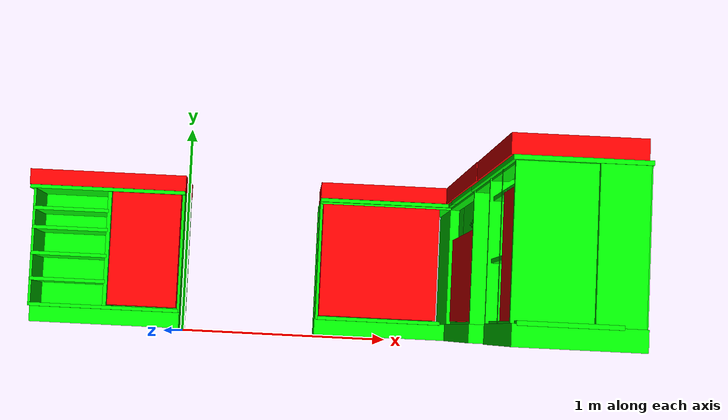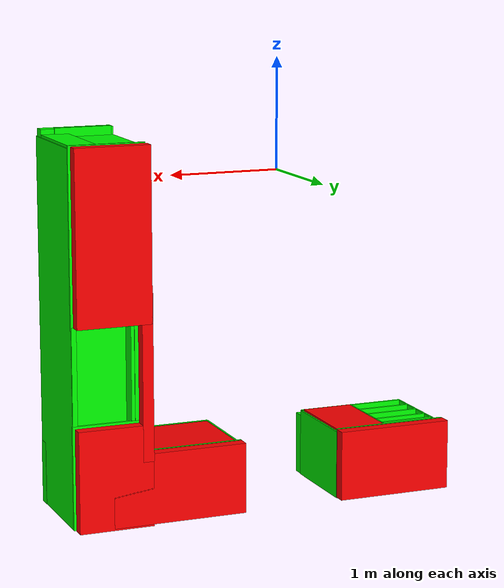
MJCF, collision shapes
<mujoco model="StandardCounterHeightWidth_59bda8d0">
  <compiler autolimits="true" boundmass="0.01" angle="radian"/>
  <default>
    <default class="/">
      <default class="__VISUAL_MJT__">
        <geom contype="0" conaffinity="0" group="0" mass="1e-08"/>
      </default>
      <default class="__STRUCTURAL_MJT__">
        <geom contype="8" conaffinity="15" group="4" friction="0.90000000000000002 0.90000000000000002 0.001" density="500" solref="0.025000000000000001 1" solimp="0.998 0.998 0.001"/>
      </default>
      <default class="__DYNAMIC_MJT__">
        <geom contype="1" conaffinity="15" group="4" friction="0.90000000000000002 0.90000000000000002 0.001" density="500" solref="0.025000000000000001 1" solimp="0.998 0.998 0.001"/>
      </default>
      <default class="__ARTICULABLE_DYNAMIC_MJT__">
        <geom contype="0" conaffinity="7" group="4" friction="0.90000000000000002 0.90000000000000002 0.001" density="500" solref="0.025000000000000001 1" solimp="0.998 0.998 0.001"/>
      </default>
    </default>
  </default>
  <asset>
    <material name="material_WhiteWoodClean" class="/" specular="0.5" shininess="0.5" rgba="1 1 1 1"/>
    <texture name="LightWhite" type="2d" file="TexturesCom_MarbleNoisy0062_1_seamless_S.png"/>
    <material name="material_LightWhite" class="/" texture="LightWhite" specular="0.5" shininess="0.5" rgba="0.88970590000000005 0.88970590000000005 0.88970590000000005 1"/>
    <mesh name="StandardCounterHeightWidth_59bda8d0_StandardCounterHeightWidth_59bda8d0_0" class="/" file="StandardCounterHeightWidth_59bda8d0_StandardCounterHeightWidth_59bda8d0/StandardCounterHeightWidth_59bda8d0_StandardCounterHeightWidth_59bda8d0_0.obj" scale="1 1 1" inertia="legacy"/>
    <mesh name="StandardCounterHeightWidth_59bda8d0_StandardCounterHeightWidth_59bda8d0_1" class="/" file="StandardCounterHeightWidth_59bda8d0_StandardCounterHeightWidth_59bda8d0/StandardCounterHeightWidth_59bda8d0_StandardCounterHeightWidth_59bda8d0_1.obj" scale="1 1 1" inertia="legacy"/>
  </asset>
  <worldbody>
    <body name="StandardCounterHeightWidth_59bda8d0">
      <body name="StandardCounterHeightWidth_59bda8d0_StandardCounterHeightWidth_59bda8d0" pos="-0 0 0" quat="1 0 0 0">
        <geom name="StandardCounterHeightWidth_59bda8d0_StandardCounterHeightWidth_59bda8d0_0" class="__VISUAL_MJT__" type="mesh" material="material_WhiteWoodClean" mesh="StandardCounterHeightWidth_59bda8d0_StandardCounterHeightWidth_59bda8d0_0"/>
        <geom name="StandardCounterHeightWidth_59bda8d0_StandardCounterHeightWidth_59bda8d0_1" class="__VISUAL_MJT__" type="mesh" material="material_LightWhite" mesh="StandardCounterHeightWidth_59bda8d0_StandardCounterHeightWidth_59bda8d0_1"/>
        <site name="StandardCounterHeightWidth_59bda8d0_StandardCounterHeightWidth_59bda8d0_Receptacle_0" class="/" type="box" rgba="1 0 0 1" size="0.46698275208473206 0.26118838787078857 0.19965556263923645" pos="1.7553443908691406 0.38748836517333984 -1.5067006349563599" quat="0 0.70710678118654757 0 0.70710678118654757"/>
        <site name="StandardCounterHeightWidth_59bda8d0_StandardCounterHeightWidth_59bda8d0_Receptacle_1" class="/" type="box" rgba="1 0 0 1" size="0.38414856791496277 0.36928397417068481 0.20177745819091797" pos="1.1041486263275146 0.49628466367721558 -2.4027144908905029" quat="0 1 0 0"/>
        <site name="StandardCounterHeightWidth_59bda8d0_StandardCounterHeightWidth_59bda8d0_Receptacle_2" class="/" type="box" rgba="1 0 0 1" size="0.22718478739261627 0.3813571035861969 0.19650635123252869" pos="-0.44999992847442627 0.51199996471405029 -2.3870000839233398" quat="0 1 0 0"/>
        <site name="StandardCounterHeightWidth_59bda8d0_StandardCounterHeightWidth_59bda8d0_Receptacle_3" class="/" type="box" rgba="1 0 0 1" size="0.18174411356449127 0.31935292482376099 0.19941979646682739" pos="1.7650725841522217 0.439250648021698 0.20343700051307678" quat="0 0.70710678118654757 0 0.70710678118654757"/>
        <site name="StandardCounterHeightWidth_59bda8d0_StandardCounterHeightWidth_59bda8d0_Receptacle_4" class="/" type="box" rgba="1 0 0 1" size="0.3257116973400116 0.051499977707862854 0.74385678768157959" pos="1.8562743663787842 0.9528999924659729 -0.32703673839569092" quat="0 1 0 0"/>
        <site name="StandardCounterHeightWidth_59bda8d0_StandardCounterHeightWidth_59bda8d0_Receptacle_5" class="/" type="box" rgba="1 0 0 1" size="0.59034931659698486 0.051500000059604645 0.30725890398025513" pos="1.2908389568328857 0.9528999924659729 -2.4834566116333008" quat="0 1 0 0"/>
        <site name="StandardCounterHeightWidth_59bda8d0_StandardCounterHeightWidth_59bda8d0_Receptacle_6" class="/" type="box" rgba="1 0 0 1" size="0.3257099986076355 0.051500000059604645 0.4392341673374176" pos="1.8562743663787842 0.9528999924659729 -2.366023063659668" quat="0 1 0 0"/>
        <site name="StandardCounterHeightWidth_59bda8d0_StandardCounterHeightWidth_59bda8d0_Receptacle_7" class="/" type="box" rgba="1 0 0 1" size="0.04739578440785408 0.051500000059604645 0.7466997504234314" pos="1.5742080211639404 0.9528999924659729 -1.4961683750152588" quat="0 1 0 0"/>
        <site name="StandardCounterHeightWidth_59bda8d0_StandardCounterHeightWidth_59bda8d0_Receptacle_8" class="/" type="box" rgba="1 0 0 1" size="0.51547878980636597 0.051499977707862854 0.30726626515388489" pos="-0.71155726909637451 0.95219999551773071 -2.4839999675750732" quat="0 1 0 0"/>
        <geom name="StandardCounterHeightWidth_59bda8d0_StandardCounterHeightWidth_59bda8d0_PrimitiveCollider_0" class="__DYNAMIC_MJT__" type="box" size="0.11903977394104004 0.39934372901916504 0.41769060492515564" rgba="0 1 0 1" pos="2.0712711811065674 0.48989582061767578 0.0053951889276504517" quat="0 1 0 0"/>
        <geom name="StandardCounterHeightWidth_59bda8d0_StandardCounterHeightWidth_59bda8d0_PrimitiveCollider_1" class="__DYNAMIC_MJT__" type="box" size="0.40857243537902832 0.39934372901916504 0.098129153251647949" rgba="0 1 0 1" pos="1.1023924350738525 0.48989582061767578 -2.7005877494812012" quat="0 1 0 0"/>
        <geom name="StandardCounterHeightWidth_59bda8d0_StandardCounterHeightWidth_59bda8d0_PrimitiveCollider_2" class="__DYNAMIC_MJT__" type="box" size="0.48764577507972717 0.39934372901916504 0.098129153251647949" rgba="0 1 0 1" pos="-0.70301330089569092 0.48989582061767578 -2.7005877494812012" quat="0 1 0 0"/>
        <geom name="StandardCounterHeightWidth_59bda8d0_StandardCounterHeightWidth_59bda8d0_PrimitiveCollider_3" class="__DYNAMIC_MJT__" type="box" size="0.3181614875793457 0.054766781628131866 0.6157417893409729" rgba="0 1 0 1" pos="1.8721494674682617 0.053478352725505829 -1.6400001049041748" quat="0 1 0 0"/>
        <geom name="StandardCounterHeightWidth_59bda8d0_StandardCounterHeightWidth_59bda8d0_PrimitiveCollider_4" class="__DYNAMIC_MJT__" type="box" size="0.75558078289031982 0.05284726619720459 0.27572417259216309" rgba="0 1 0 1" pos="1.4494009017944336 0.052848517894744873 -2.5229928493499756" quat="0 1 0 0"/>
        <geom name="StandardCounterHeightWidth_59bda8d0_StandardCounterHeightWidth_59bda8d0_PrimitiveCollider_5" class="__DYNAMIC_MJT__" type="box" size="0.49633929133415222 0.052847243845462799 0.27448225021362305" rgba="0 1 0 1" pos="-0.6992877721786499 0.050364695489406586 -2.5242347717285156" quat="0 1 0 0"/>
        <geom name="StandardCounterHeightWidth_59bda8d0_StandardCounterHeightWidth_59bda8d0_PrimitiveCollider_6" class="__DYNAMIC_MJT__" type="box" size="0.12523806095123291 0.27242988348007202 0.48392891883850098" rgba="0 1 0 1" pos="2.0752573013305664 0.38900995254516602 -1.5150556564331055" quat="0 1 0 0"/>
        <geom name="StandardCounterHeightWidth_59bda8d0_StandardCounterHeightWidth_59bda8d0_PrimitiveCollider_7" class="__DYNAMIC_MJT__" type="box" size="0.021013617515563965 0.39934372901916504 0.31155133247375488" rgba="0 1 0 1" pos="2.1320972442626953 0.48989582061767578 -0.71808928251266479" quat="0 1 0 0"/>
        <geom name="StandardCounterHeightWidth_59bda8d0_StandardCounterHeightWidth_59bda8d0_PrimitiveCollider_8" class="__DYNAMIC_MJT__" type="box" size="0.51139593124389648 0.011459499597549438 0.31201052665710449" rgba="0 1 0 1" pos="-0.71132099628448486 0.88862216472625732 -2.4867064952850342" quat="0 1 0 0"/>
        <geom name="StandardCounterHeightWidth_59bda8d0_StandardCounterHeightWidth_59bda8d0_PrimitiveCollider_9" class="__DYNAMIC_MJT__" type="box" size="0.43300753831863403 0.011459499597549438 0.31208908557891846" rgba="0 1 0 1" pos="1.1332905292510986 0.88862216472625732 -2.4866280555725098" quat="0 1 0 0"/>
        <geom name="StandardCounterHeightWidth_59bda8d0_StandardCounterHeightWidth_59bda8d0_PrimitiveCollider_10" class="__DYNAMIC_MJT__" type="box" size="0.33020108938217163 0.011459499597549438 0.44702601432800293" rgba="0 1 0 1" pos="1.8727467060089111 0.88862216472625732 -2.3516910076141357" quat="0 1 0 0"/>
        <geom name="StandardCounterHeightWidth_59bda8d0_StandardCounterHeightWidth_59bda8d0_PrimitiveCollider_11" class="__DYNAMIC_MJT__" type="box" size="0.021608710289001465 0.011459499597549438 0.44702601432800293" rgba="0 1 0 1" pos="2.17759108543396 0.88862216472625732 -1.5146908760070801" quat="0 1 0 0"/>
        <geom name="StandardCounterHeightWidth_59bda8d0_StandardCounterHeightWidth_59bda8d0_PrimitiveCollider_12" class="__DYNAMIC_MJT__" type="box" size="0.058413386344909668 0.011459499597549438 0.44702601432800293" rgba="0 1 0 1" pos="1.5964221954345703 0.88862216472625732 -1.5146908760070801" quat="0 1 0 0"/>
        <geom name="StandardCounterHeightWidth_59bda8d0_StandardCounterHeightWidth_59bda8d0_PrimitiveCollider_13" class="__DYNAMIC_MJT__" type="box" size="0.33020108938217163 0.011459499597549438 0.76128029823303223" rgba="0 1 0 1" pos="1.8727467060089111 0.88862216472625732 -0.33481019735336304" quat="0 1 0 0"/>
        <geom name="StandardCounterHeightWidth_59bda8d0_StandardCounterHeightWidth_59bda8d0_PrimitiveCollider_14" class="__DYNAMIC_MJT__" type="box" size="0.24880456924438477 0.011459499597549438 0.29941582679748535" rgba="0 1 0 1" pos="-0.94900000095367432 0.74900001287460327 -2.5" quat="0 1 0 0"/>
        <geom name="StandardCounterHeightWidth_59bda8d0_StandardCounterHeightWidth_59bda8d0_PrimitiveCollider_15" class="__DYNAMIC_MJT__" type="box" size="0.24880456924438477 0.011459499597549438 0.29941582679748535" rgba="0 1 0 1" pos="-0.94900000095367432 0.62099999189376831 -2.5" quat="0 1 0 0"/>
        <geom name="StandardCounterHeightWidth_59bda8d0_StandardCounterHeightWidth_59bda8d0_PrimitiveCollider_16" class="__DYNAMIC_MJT__" type="box" size="0.24880456924438477 0.011459499597549438 0.29941582679748535" rgba="0 1 0 1" pos="-0.94900000095367432 0.44999998807907104 -2.5" quat="0 1 0 0"/>
        <geom name="StandardCounterHeightWidth_59bda8d0_StandardCounterHeightWidth_59bda8d0_PrimitiveCollider_17" class="__DYNAMIC_MJT__" type="box" size="0.24880456924438477 0.011459499597549438 0.29941582679748535" rgba="0 1 0 1" pos="-0.94900000095367432 0.2800000011920929 -2.5" quat="0 1 0 0"/>
        <geom name="StandardCounterHeightWidth_59bda8d0_StandardCounterHeightWidth_59bda8d0_PrimitiveCollider_18" class="__DYNAMIC_MJT__" type="box" size="0.49298596382141113 0.011459499597549438 0.27448225021362305" rgba="0 1 0 1" pos="-0.70200002193450928 0.11100000143051147 -2.4730000495910645" quat="0 1 0 0"/>
        <geom name="StandardCounterHeightWidth_59bda8d0_StandardCounterHeightWidth_59bda8d0_PrimitiveCollider_19" class="__DYNAMIC_MJT__" type="box" size="0.40349733829498291 0.011459499597549438 0.27448225021362305" rgba="0 1 0 1" pos="1.1140000820159912 0.11100000143051147 -2.4730000495910645" quat="0 1 0 0"/>
        <geom name="StandardCounterHeightWidth_59bda8d0_StandardCounterHeightWidth_59bda8d0_PrimitiveCollider_20" class="__DYNAMIC_MJT__" type="box" size="0.25 0.011459499597549438 0.53732705116271973" rgba="0 1 0 1" pos="1.8259999752044678 0.11100000143051147 -1.5646728277206421" quat="0 1 0 0"/>
        <geom name="StandardCounterHeightWidth_59bda8d0_StandardCounterHeightWidth_59bda8d0_PrimitiveCollider_21" class="__DYNAMIC_MJT__" type="box" size="0.25 0.011459499597549438 0.2044638991355896" rgba="0 1 0 1" pos="1.8259999752044678 0.43900001049041748 -0.2020382434129715" quat="0 1 0 0"/>
        <geom name="StandardCounterHeightWidth_59bda8d0_StandardCounterHeightWidth_59bda8d0_PrimitiveCollider_22" class="__DYNAMIC_MJT__" type="box" size="0.25 0.011459499597549438 0.2044638991355896" rgba="0 1 0 1" pos="1.8259999752044678 0.76899999380111694 -0.2020382434129715" quat="0 1 0 0"/>
        <geom name="StandardCounterHeightWidth_59bda8d0_StandardCounterHeightWidth_59bda8d0_PrimitiveCollider_23" class="__DYNAMIC_MJT__" type="box" size="0.25 0.011459499597549438 0.18271562457084656" rgba="0 1 0 1" pos="1.8259999752044678 0.76899999380111694 0.20621348917484283" quat="0 1 0 0"/>
        <geom name="StandardCounterHeightWidth_59bda8d0_StandardCounterHeightWidth_59bda8d0_PrimitiveCollider_24" class="__DYNAMIC_MJT__" type="box" size="0.031930267810821533 0.11724644899368286 0.47114837169647217" rgba="0 1 0 1" pos="1.6520743370056152 0.77675354480743408 -1.5056706666946411" quat="0 1 0 0"/>
        <geom name="StandardCounterHeightWidth_59bda8d0_StandardCounterHeightWidth_59bda8d0_PrimitiveCollider_25" class="__DYNAMIC_MJT__" type="box" size="0.29089945554733276 0.049015045166015625 0.47153627872467041" rgba="0 1 0 1" pos="1.9110435247421265 0.70852214097976685 -1.5056706666946411" quat="0 1 0 0"/>
        <geom name="StandardCounterHeightWidth_59bda8d0_StandardCounterHeightWidth_59bda8d0_PrimitiveCollider_26" class="__DYNAMIC_MJT__" type="box" size="0.43300753831863403 0.011459499597549438 0.3002244234085083" rgba="0 1 0 1" pos="1.1332905292510986 0.87562215328216553 -2.4984927177429199" quat="0 1 0 0"/>
        <geom name="StandardCounterHeightWidth_59bda8d0_StandardCounterHeightWidth_59bda8d0_PrimitiveCollider_27" class="__DYNAMIC_MJT__" type="box" size="0.045981764793395996 0.011459499597549438 1.4002518653869629" rgba="0 1 0 1" pos="1.608853816986084 0.87562215328216553 -1.0028879642486572" quat="0 1 0 0"/>
        <geom name="StandardCounterHeightWidth_59bda8d0_StandardCounterHeightWidth_59bda8d0_PrimitiveCollider_28" class="__DYNAMIC_MJT__" type="box" size="0.0082523524761199951 0.3916703462600708 0.29979789257049561" rgba="0 1 0 1" pos="-1.1929999589920044 0.49300000071525574 -2.502000093460083" quat="0 1 0 0"/>
        <geom name="StandardCounterHeightWidth_59bda8d0_StandardCounterHeightWidth_59bda8d0_PrimitiveCollider_29" class="__DYNAMIC_MJT__" type="box" size="0.012773066759109497 0.3916703462600708 0.29979789257049561" rgba="0 1 0 1" pos="-0.69699990749359131 0.49300000071525574 -2.502000093460083" quat="0 1 0 0"/>
        <geom name="StandardCounterHeightWidth_59bda8d0_StandardCounterHeightWidth_59bda8d0_PrimitiveCollider_30" class="__DYNAMIC_MJT__" type="box" size="0.0082523524761199951 0.3916703462600708 0.29979789257049561" rgba="0 1 0 1" pos="-0.2080000638961792 0.49300000071525574 -2.502000093460083" quat="0 1 0 0"/>
        <geom name="StandardCounterHeightWidth_59bda8d0_StandardCounterHeightWidth_59bda8d0_PrimitiveCollider_31" class="__DYNAMIC_MJT__" type="box" size="0.0082523524761199951 0.3916703462600708 0.29979789257049561" rgba="0 1 0 1" pos="0.7070000171661377 0.49300000071525574 -2.502000093460083" quat="0 1 0 0"/>
        <geom name="StandardCounterHeightWidth_59bda8d0_StandardCounterHeightWidth_59bda8d0_PrimitiveCollider_32" class="__DYNAMIC_MJT__" type="box" size="0.037671584635972977 0.3916703462600708 0.29979789257049561" rgba="0 1 0 1" pos="1.5977542400360107 0.49300000071525574 -2.502000093460083" quat="0 1 0 0"/>
        <geom name="StandardCounterHeightWidth_59bda8d0_StandardCounterHeightWidth_59bda8d0_PrimitiveCollider_33" class="__DYNAMIC_MJT__" type="box" size="0.28581362962722778 0.41277384757995605 0.13079303503036499" rgba="0 1 0 1" pos="1.9046093225479126 0.4718964695930481 -2.1049952507019043" quat="0 1 0 0"/>
        <geom name="StandardCounterHeightWidth_59bda8d0_StandardCounterHeightWidth_59bda8d0_PrimitiveCollider_34" class="__DYNAMIC_MJT__" type="box" size="0.28581362962722778 0.38863030076026917 0.010578379034996033" rgba="0 1 0 1" pos="1.8426092863082886 0.49604004621505737 -1.0314921140670776" quat="0 1 0 0"/>
        <geom name="StandardCounterHeightWidth_59bda8d0_StandardCounterHeightWidth_59bda8d0_PrimitiveCollider_35" class="__DYNAMIC_MJT__" type="box" size="0.28581362962722778 0.38863030076026917 0.010578379034996033" rgba="0 1 0 1" pos="1.8426092863082886 0.49604004621505737 -0.41149216890335083" quat="0 1 0 0"/>
        <geom name="StandardCounterHeightWidth_59bda8d0_StandardCounterHeightWidth_59bda8d0_PrimitiveCollider_36" class="__DYNAMIC_MJT__" type="box" size="1.0000000000000001e-05 0.38863030076026917 0.014099299907684326" rgba="0 1 0 1" pos="1.5567957162857056 0.49604004621505737 0.0095078498125076294" quat="0 1 0 0"/>
        <geom name="StandardCounterHeightWidth_59bda8d0_StandardCounterHeightWidth_59bda8d0_PrimitiveCollider_37" class="__DYNAMIC_MJT__" type="box" size="0.28581362962722778 0.38863030076026917 0.010578379034996033" rgba="0 1 0 1" pos="1.8426092863082886 0.49604004621505737 0.3875078558921814" quat="0 1 0 0"/>
        <geom name="StandardCounterHeightWidth_59bda8d0_StandardCounterHeightWidth_59bda8d0_PrimitiveCollider_38" class="__DYNAMIC_MJT__" type="box" size="0.021013617515563965 0.44426620006561279 1.5993289947509766" rgba="0 1 0 1" pos="2.1810972690582275 0.44497334957122803 -1.1972622871398926" quat="0 1 0 0"/>
        <geom name="StandardCounterHeightWidth_59bda8d0_StandardCounterHeightWidth_59bda8d0_PrimitiveCollider_39" class="__DYNAMIC_MJT__" type="box" size="0.3181614875793457 0.054766781628131866 0.44458836317062378" rgba="0 1 0 1" pos="1.8721494674682617 0.053478352725505829 0.022146895527839661" quat="0 1 0 0"/>
        <geom name="StandardCounterHeightWidth_59bda8d0_StandardCounterHeightWidth_59bda8d0_PrimitiveCollider_40" class="__DYNAMIC_MJT__" type="box" size="0.25 0.011459499597549438 0.44639080762863159" rgba="0 1 0 1" pos="1.8259999752044678 0.11100000143051147 0.028664186596870422" quat="0 1 0 0"/>
      </body>
    </body>
  </worldbody>
</mujoco>
